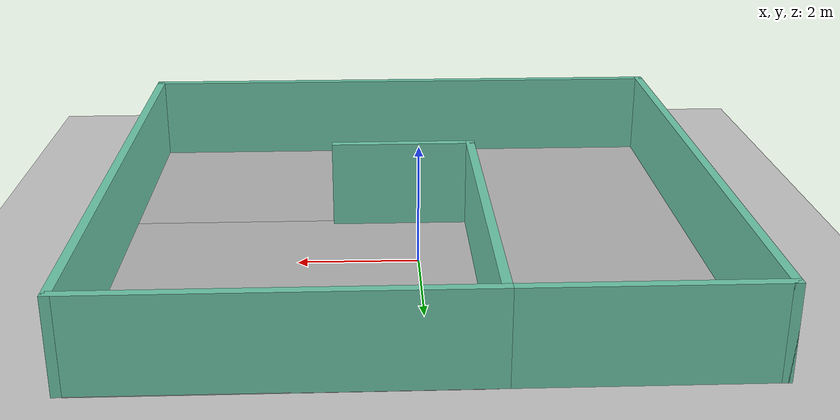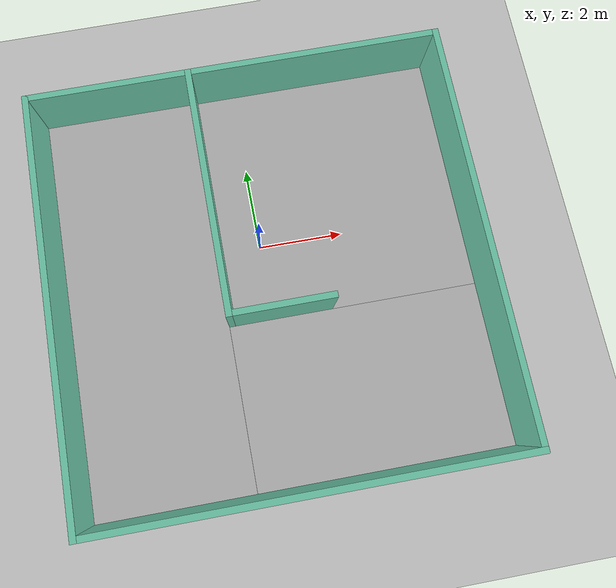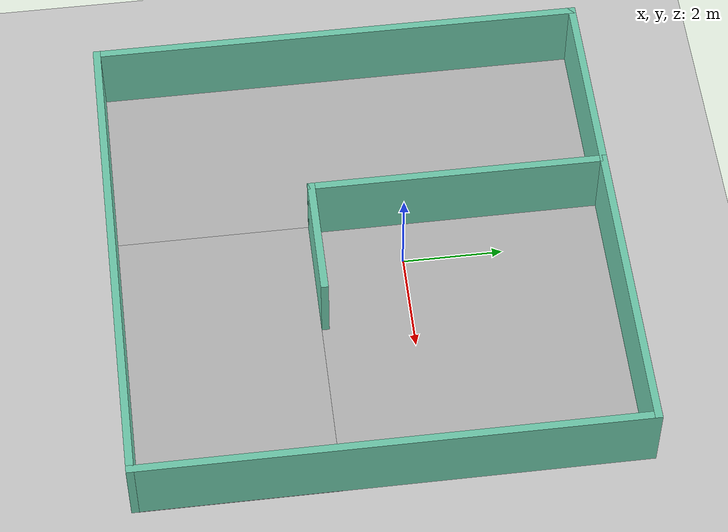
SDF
<sdf version="1.7">
 <world name="default">
  <light name="sun" type="directional">
   <pose>0 0 10 0 -0 0</pose>
   <diffuse>0.8 0.8 0.8 1</diffuse>
   <specular>0.2 0.2 0.2 1</specular>
   <attenuation>
    <range>1000</range>
    <constant>0.9</constant>
    <linear>0.01</linear>
    <quadratic>0.001</quadratic>
   </attenuation>
   <direction>-0.5 0.1 -0.9</direction>
   <spot><inner_angle>0</inner_angle><outer_angle>0</outer_angle><falloff>0</falloff></spot>
  </light>
  <model name="ground_plane">
   <static>1</static>
   <link name="link">
    <collision name="collision">
     <geometry><plane><normal>0 0 1</normal><size>100 100</size></plane></geometry>
     <surface><friction><ode><mu>100</mu><mu2>50</mu2></ode></friction></surface>
    </collision>
    <visual name="visual">
     <cast_shadows>0</cast_shadows>
     <geometry><plane><normal>0 0 1</normal><size>100 100</size></plane></geometry>
     <material>
      <script><uri>file://media/materials/scripts/gazebo.material</uri><name>Gazebo/Grey</name></script>
     </material>
    </visual>
   </link>
  </model>
  <gravity>0 0 -9.8</gravity>
  <magnetic_field>6e-06 2.3e-05 -4.2e-05</magnetic_field>
  <atmosphere type="adiabatic"/>
  <physics type="ode">
   <max_step_size>0.001</max_step_size>
   <real_time_factor>1</real_time_factor>
   <real_time_update_rate>1000</real_time_update_rate>
  </physics>
  <scene><ambient>0.4 0.4 0.4 1</ambient><background>0.7 0.7 0.7 1</background><shadows>1</shadows></scene>
  <audio><device>default</device></audio>
  <spherical_coordinates>
   <surface_model>EARTH_WGS84</surface_model>
   <latitude_deg>0</latitude_deg>
   <longitude_deg>0</longitude_deg>
   <elevation>0</elevation>
   <heading_deg>0</heading_deg>
  </spherical_coordinates>
  <model name="test_room_v3">
   <pose>0.092652 -0.793433 0 0 -0 0</pose>
   <link name="Wall_0">
    <collision name="Wall_0_Collision">
     <geometry><box><size>10 0.15 1.5</size></box></geometry>
     <pose>0 0 0.75 0 -0 0</pose>
    </collision>
    <visual name="Wall_0_Visual">
     <pose>0 0 0.75 0 -0 0</pose>
     <geometry><box><size>10 0.15 1.5</size></box></geometry>
     <material>
      <script><uri>file://media/materials/scripts/gazebo.material</uri><name>Gazebo/Grey</name></script>
      <ambient>0.435294 0.796078 0.67451 1</ambient>
     </material>
     <meta><layer>0</layer></meta>
    </visual>
    <pose>-4.925 0 0 0 -0 1.5708</pose>
   </link>
   <link name="Wall_12">
    <collision name="Wall_12_Collision">
     <geometry><box><size>4 0.15 1.5</size></box></geometry>
     <pose>0 0 0.75 0 -0 0</pose>
    </collision>
    <visual name="Wall_12_Visual">
     <pose>0 0 0.75 0 -0 0</pose>
     <geometry><box><size>4 0.15 1.5</size></box></geometry>
     <material>
      <script><uri>file://media/materials/scripts/gazebo.material</uri><name>Gazebo/Grey</name></script>
      <ambient>0.435294 0.796078 0.67451 1</ambient>
     </material>
     <meta><layer>0</layer></meta>
    </visual>
    <pose>-3 4.925 0 0 -0 0</pose>
   </link>
   <link name="Wall_14">
    <collision name="Wall_14_Collision">
     <geometry><box><size>6 0.15 1.5</size></box></geometry>
     <pose>0 0 0.75 0 -0 0</pose>
    </collision>
    <visual name="Wall_14_Visual">
     <pose>0 0 0.75 0 -0 0</pose>
     <geometry><box><size>6 0.15 1.5</size></box></geometry>
     <material>
      <script><uri>file://media/materials/scripts/gazebo.material</uri><name>Gazebo/Grey</name></script>
      <ambient>0.435294 0.796078 0.67451 1</ambient>
     </material>
     <meta><layer>0</layer></meta>
    </visual>
    <pose>-1.075 2 0 0 -0 -1.5708</pose>
   </link>
   <link name="Wall_16">
    <collision name="Wall_16_Collision">
     <geometry><box><size>6.15 0.15 1.5</size></box></geometry>
     <pose>0 0 0.75 0 -0 0</pose>
    </collision>
    <visual name="Wall_16_Visual">
     <pose>0 0 0.75 0 -0 0</pose>
     <geometry><box><size>6.15 0.15 1.5</size></box></geometry>
     <material>
      <script><uri>file://media/materials/scripts/gazebo.material</uri><name>Gazebo/Grey</name></script>
      <ambient>0.435294 0.796078 0.67451 1</ambient>
     </material>
     <meta><layer>0</layer></meta>
    </visual>
    <pose>1.925 4.925 0 0 -0 3.14159</pose>
   </link>
   <link name="Wall_18">
    <collision name="Wall_18_Collision">
     <geometry><box><size>2.5 0.15 1.5</size></box></geometry>
     <pose>0 0 0.75 0 -0 0</pose>
    </collision>
    <visual name="Wall_18_Visual">
     <pose>0 0 0.75 0 -0 0</pose>
     <geometry><box><size>2.5 0.15 1.5</size></box></geometry>
     <material>
      <script><uri>file://media/materials/scripts/gazebo.material</uri><name>Gazebo/Grey</name></script>
      <ambient>0.435294 0.796078 0.67451 1</ambient>
     </material>
     <meta><layer>0</layer></meta>
    </visual>
    <pose>0.1 -0.925 0 0 -0 0</pose>
   </link>
   <link name="Wall_4">
    <collision name="Wall_4_Collision">
     <geometry><box><size>10 0.15 1.5</size></box></geometry>
     <pose>0 0 0.75 0 -0 0</pose>
    </collision>
    <visual name="Wall_4_Visual">
     <pose>0 0 0.75 0 -0 0</pose>
     <geometry><box><size>10 0.15 1.5</size></box></geometry>
     <material>
      <script><uri>file://media/materials/scripts/gazebo.material</uri><name>Gazebo/Grey</name></script>
      <ambient>0.435294 0.796078 0.67451 1</ambient>
     </material>
     <meta><layer>0</layer></meta>
    </visual>
    <pose>4.925 0 0 0 -0 -1.5708</pose>
   </link>
   <link name="Wall_6">
    <collision name="Wall_6_Collision">
     <geometry><box><size>10 0.15 1.5</size></box></geometry>
     <pose>0 0 0.75 0 -0 0</pose>
    </collision>
    <visual name="Wall_6_Visual">
     <pose>0 0 0.75 0 -0 0</pose>
     <geometry><box><size>10 0.15 1.5</size></box></geometry>
     <material>
      <script><uri>file://media/materials/scripts/gazebo.material</uri><name>Gazebo/Grey</name></script>
      <ambient>0.435294 0.796078 0.67451 1</ambient>
     </material>
     <meta><layer>0</layer></meta>
    </visual>
    <pose>-0 -4.925 0 0 -0 0</pose>
   </link>
   <static>1</static>
   <link name="image_1">
    <pose>-3.075 0 0.001 0 -0 0</pose>
    <collision name="image_1_Col"><geometry><box><size>3.85 9.7 0.01</size></box></geometry></collision>
    <visual name="image_1_Vis">
     <geometry><box><size>3.85 9.7 0.01</size></box></geometry>
     <material>
      <script>
       <uri>model://test_room_v3/materials/scripts</uri>
       <uri>model://test_room_v3/materials/textures/</uri>
       <name>image_1_Mat</name>
      </script>
     </material>
    </visual>
   </link>
   <link name="image_2">
    <pose>1.925 2 0.001 0 -0 0</pose>
    <collision name="image_2_Col"><geometry><box><size>5.85 6 0.01</size></box></geometry></collision>
    <visual name="image_2_Vis">
     <geometry><box><size>5.85 6 0.01</size></box></geometry>
     <material>
      <script>
       <uri>model://test_room_v3/materials/scripts</uri>
       <uri>model://test_room_v3/materials/textures/</uri>
       <name>image_2_Mat</name>
      </script>
     </material>
    </visual>
   </link>
   <link name="image_3">
    <pose>1.925 -2.925 0.001 0 -0 0</pose>
    <collision name="image_3_Col"><geometry><box><size>6.15 3.85 0.01</size></box></geometry></collision>
    <visual name="image_3_Vis">
     <geometry><box><size>6.15 3.85 0.01</size></box></geometry>
     <material>
      <script>
       <uri>model://test_room_v3/materials/scripts</uri>
       <uri>model://test_room_v3/materials/textures/</uri>
       <name>image_3_Mat</name>
      </script>
     </material>
    </visual>
   </link>
  </model>
 </world>
</sdf>
